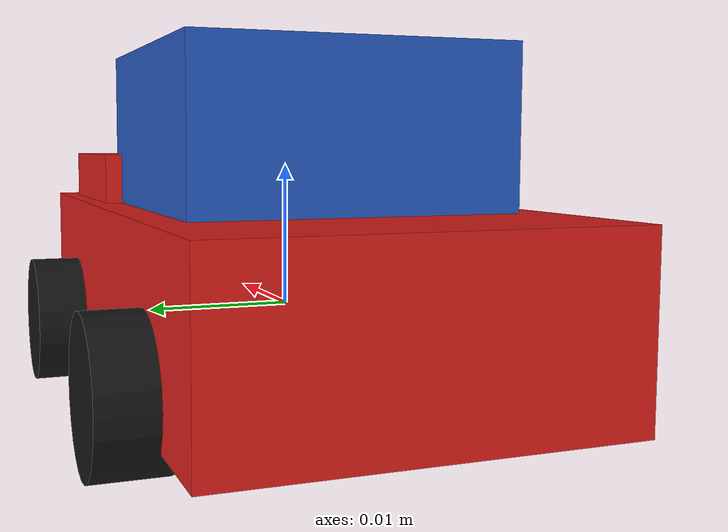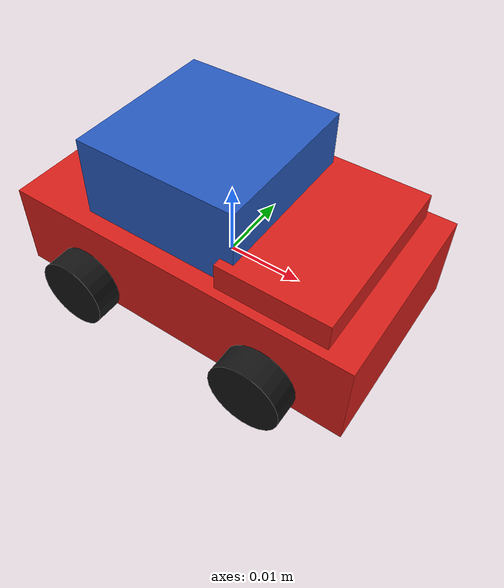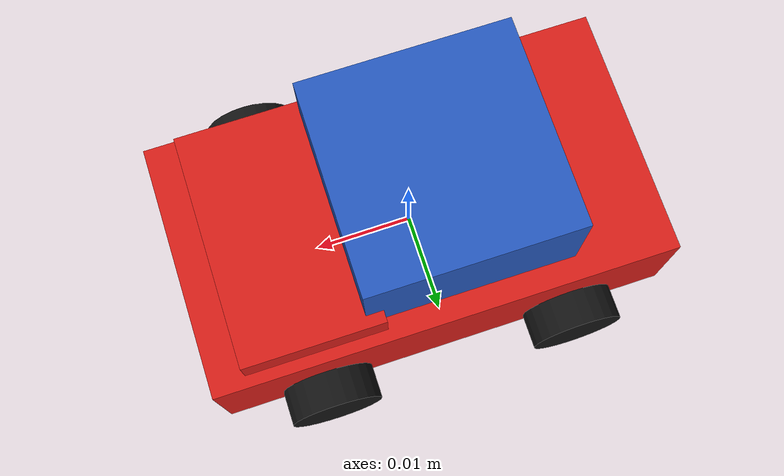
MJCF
<mujoco model="chocolate_pudding_mover">
  <compiler angle="radian"/>
  <asset>
    <material name="car_body" rgba="0.85 0.12 0.10 1" specular="0.4" reflectance="0.3"/>
    <material name="car_cabin" rgba="0.15 0.35 0.75 1" specular="0.4" reflectance="0.3"/>
    <material name="car_wheel" rgba="0.08 0.08 0.08 1" specular="0.4" reflectance="0.3"/>
  </asset>
  <worldbody>
    <body>
      <body name="object">
        <geom name="chassis" type="box" size="0.02381 0.01310 0.00595" pos="0.00000 0.00000 0.00119"
              material="car_body" group="1" contype="0" conaffinity="0"
              solimp="0.998 0.998 0.001" solref="0.001 1" density="100" friction="0.95 0.3 0.1"/>
        <geom name="cabin" type="box" size="0.01071 0.01071 0.00595" pos="-0.00298 0.00000 0.01190"
              material="car_cabin" group="1" contype="0" conaffinity="0"
              solimp="0.998 0.998 0.001" solref="0.001 1" density="100" friction="0.95 0.3 0.1"/>
        <geom name="hood" type="box" size="0.00714 0.01190 0.00357" pos="0.01310 0.00000 0.00714"
              material="car_body" group="1" contype="0" conaffinity="0"
              solimp="0.998 0.998 0.001" solref="0.001 1" density="100" friction="0.95 0.3 0.1"/>
        <geom name="w_fl" type="cylinder" size="0.00476 0.00238" pos="0.01310 0.01429 -0.00238" euler="1.5708 0 0"
              material="car_wheel" group="1" contype="0" conaffinity="0"
              solimp="0.998 0.998 0.001" solref="0.001 1" density="100" friction="0.95 0.3 0.1"/>
        <geom name="w_fr" type="cylinder" size="0.00476 0.00238" pos="0.01310 -0.01429 -0.00238" euler="1.5708 0 0"
              material="car_wheel" group="1" contype="0" conaffinity="0"
              solimp="0.998 0.998 0.001" solref="0.001 1" density="100" friction="0.95 0.3 0.1"/>
        <geom name="w_rl" type="cylinder" size="0.00476 0.00238" pos="-0.01310 0.01429 -0.00238" euler="1.5708 0 0"
              material="car_wheel" group="1" contype="0" conaffinity="0"
              solimp="0.998 0.998 0.001" solref="0.001 1" density="100" friction="0.95 0.3 0.1"/>
        <geom name="w_rr" type="cylinder" size="0.00476 0.00238" pos="-0.01310 -0.01429 -0.00238" euler="1.5708 0 0"
              material="car_wheel" group="1" contype="0" conaffinity="0"
              solimp="0.998 0.998 0.001" solref="0.001 1" density="100" friction="0.95 0.3 0.1"/>
        <geom type="box" size="0.02500 0.01667 0.01071" pos="0.00000 0.00000 0.00298" group="0"
              rgba="0.8 0.2 0.2 0.0" solimp="0.998 0.998 0.001" solref="0.001 1"
              density="100" friction="0.95 0.3 0.1"/>
      </body>
      <site rgba="0 0 0 0" size="0.005" pos="0.00000 0.00000 -0.06000" name="bottom_site" />
      <site rgba="0 0 0 0" size="0.005" pos="0.00000 0.00000 0.04000" name="top_site" />
      <site rgba="0 0 0 0" size="0.005" pos="0.02500 0.02500 0.00000" name="horizontal_radius_site" />
    </body>
  </worldbody>
</mujoco>
